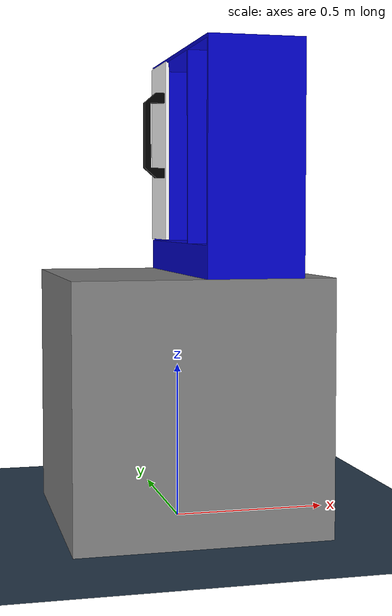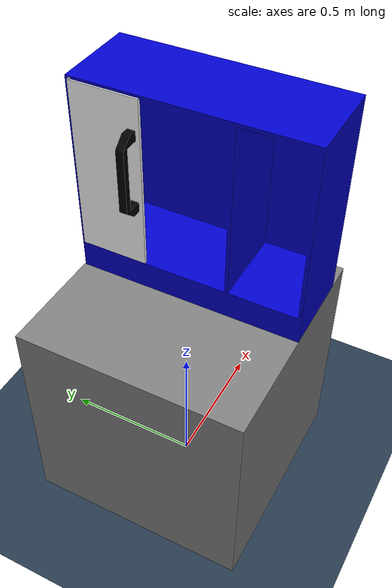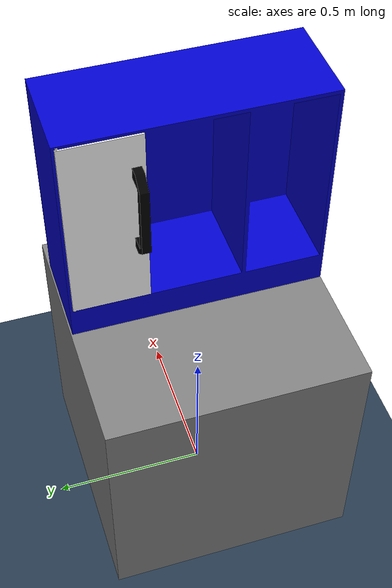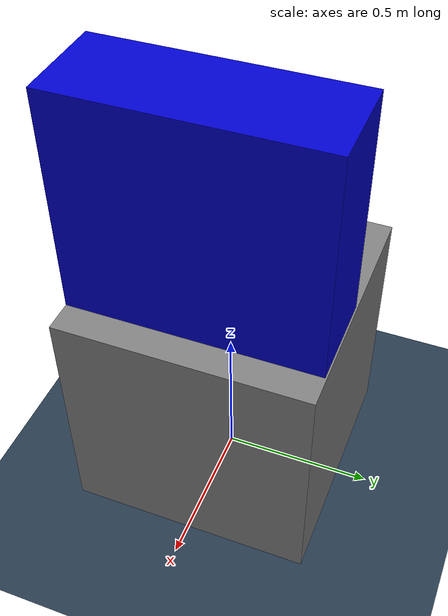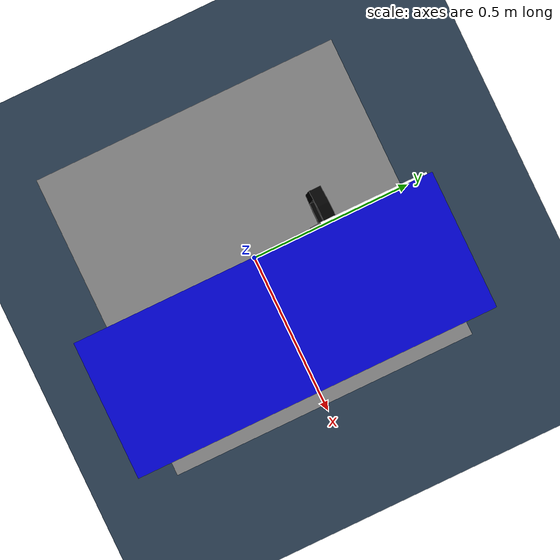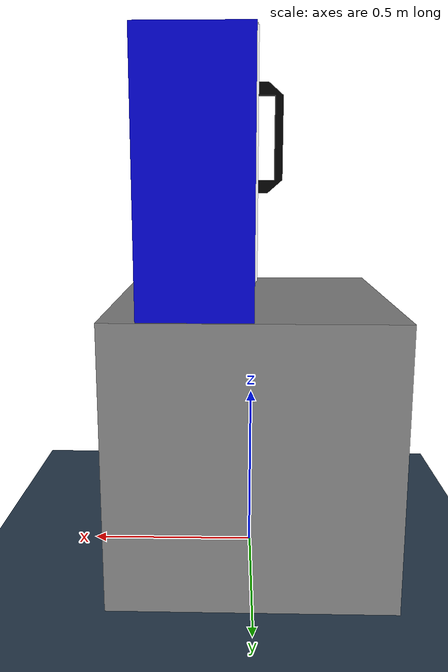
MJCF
<mujoco model="table_cabinet_arena">
  <asset>
    <texture builtin="gradient" height="256" rgb1=".9 .9 1." rgb2=".2 .3 .4" type="skybox" width="256"/>
    <texture builtin="checker" height="512" name="texplane" rgb1=".2 .3 .4" rgb2=".1 0.15 0.2" type="2d" width="512"/>
    <material name="floorplane" reflectance="0.5" texrepeat="1 1" texture="texplane" texuniform="true"/>
    <mesh name="cabinet_body" file="./cabinet/cabinet_body.STL" scale="0.001 0.001 0.001" />
    <mesh name="cabinet_door" file="./cabinet/cabinet_door.STL" scale="0.001 0.001 0.001" />
    <mesh name="cabinet_knob" file="./cabinet/cabinet_knob.STL" scale="0.001 0.001 0.001" />
  </asset>
  <worldbody>
    <geom condim="3" material="floorplane" name="floor" pos="0 0 0" size="3 3 .125" type="plane"/>
    <body name="table" pos="0 0 0.4">
      <geom pos="0 0 0" size="0.4 0.4 0.4" type="box" name="table_collision" friction="1 0.005 0.0001"/>
      <geom pos="0 0 0" size="0.4 0.4 0.4" type="box" conaffinity="0" contype="0" group="1" name="table_visual"/>
      <site pos="0 0 0.4" name="table_top" size="0.001 0.001 0.001" rgba="0 0 0 0"/>
    </body>

    <light diffuse=".8 .8 .8" dir="0 -.15 -1" directional="false" pos="1 1 4.0" specular="0.3 0.3 0.3" castshadow="false"/>
    <light diffuse=".8 .8 .8" dir="0 -.15 -1" directional="false" pos="-3. -3. 4.0" specular="0.3 0.3 0.3" castshadow="false"/>
    <!-- front view -->
    <camera mode="fixed" name="frontview" pos="1.6 0 1.45" quat="0.56 0.43 0.43 0.56"/>
    <!-- bird view -->
    <camera mode="fixed" name="birdview" pos="-0.2 0 3.0" quat="0.7071 0 0 0.7071"/>
    <!-- agent view -->
    <camera mode="fixed" name="agentview" pos="0.5 0 1.35" quat="0.653 0.271 0.271 0.653"/>

    <geom quat="0.5 0.5 0.5 0.5" pos="0 -0.4 0.8"  type="mesh" contype="0" conaffinity="0" group="1" rgba="0 0 0.8 1" mesh="cabinet_body" />

    <body name="door_link" pos="0.0 0.38 0.895" quat="0.707 0 0 0.707" >
        <inertial pos="-0.0322282 0.000814966 0.0321541" quat="0.706133 -0.0631938 -0.0614386 0.702573" mass="1.343" diaginertia="0.115549 0.0813332 0.0350412" />
        <joint name="base_to_door" pos="0 0 0" axis="0 0 1" limited="true" range="0 1.0" />
        <geom pos="0.006 -0.0055 0" quat="0.000563312 0.000562864 0.706825 0.707388" type="mesh" contype="0" conaffinity="0" group="1" rgba="1 1 1 1" mesh="cabinet_door" />
        <geom pos="-0.2175 0.0055 0.217" type="mesh" contype="0" conaffinity="0" group="1" rgba="0 0 0 1" mesh="cabinet_knob" />
    </body>
  </worldbody>
</mujoco>
